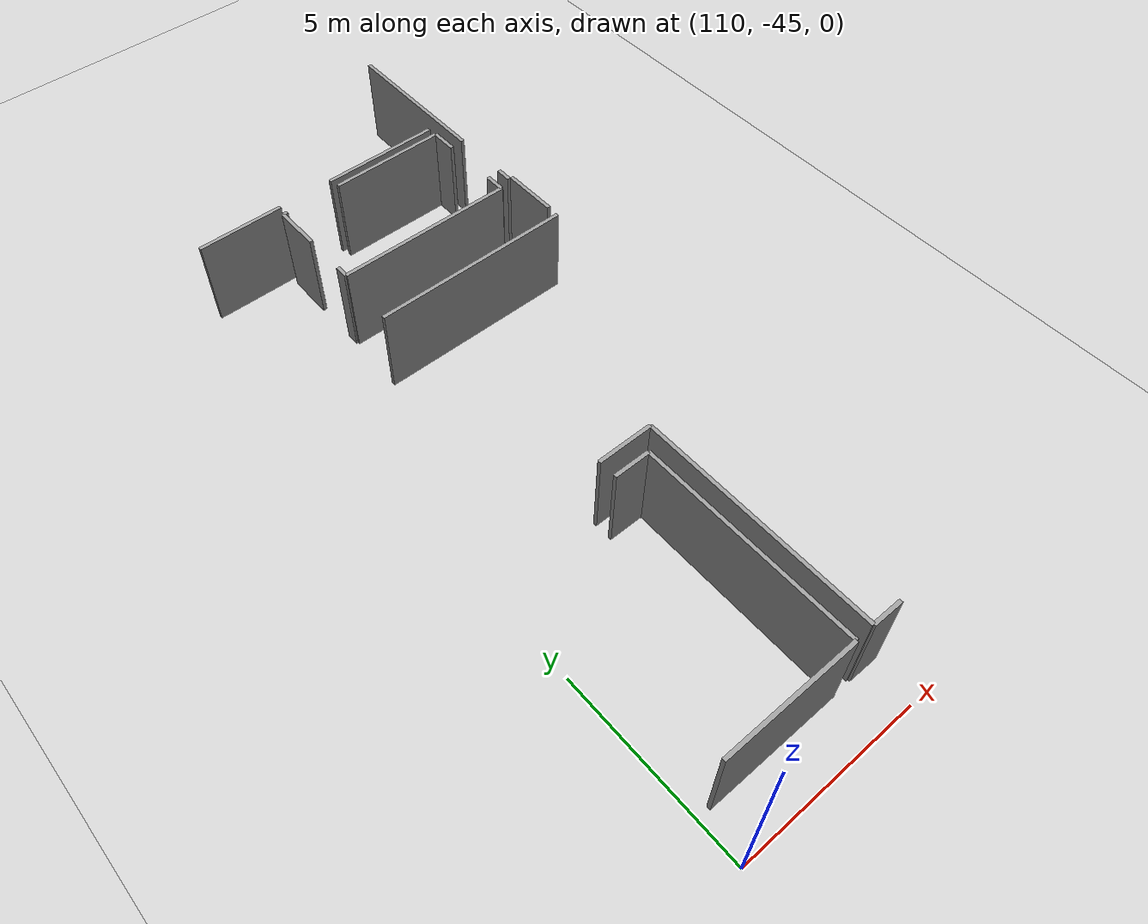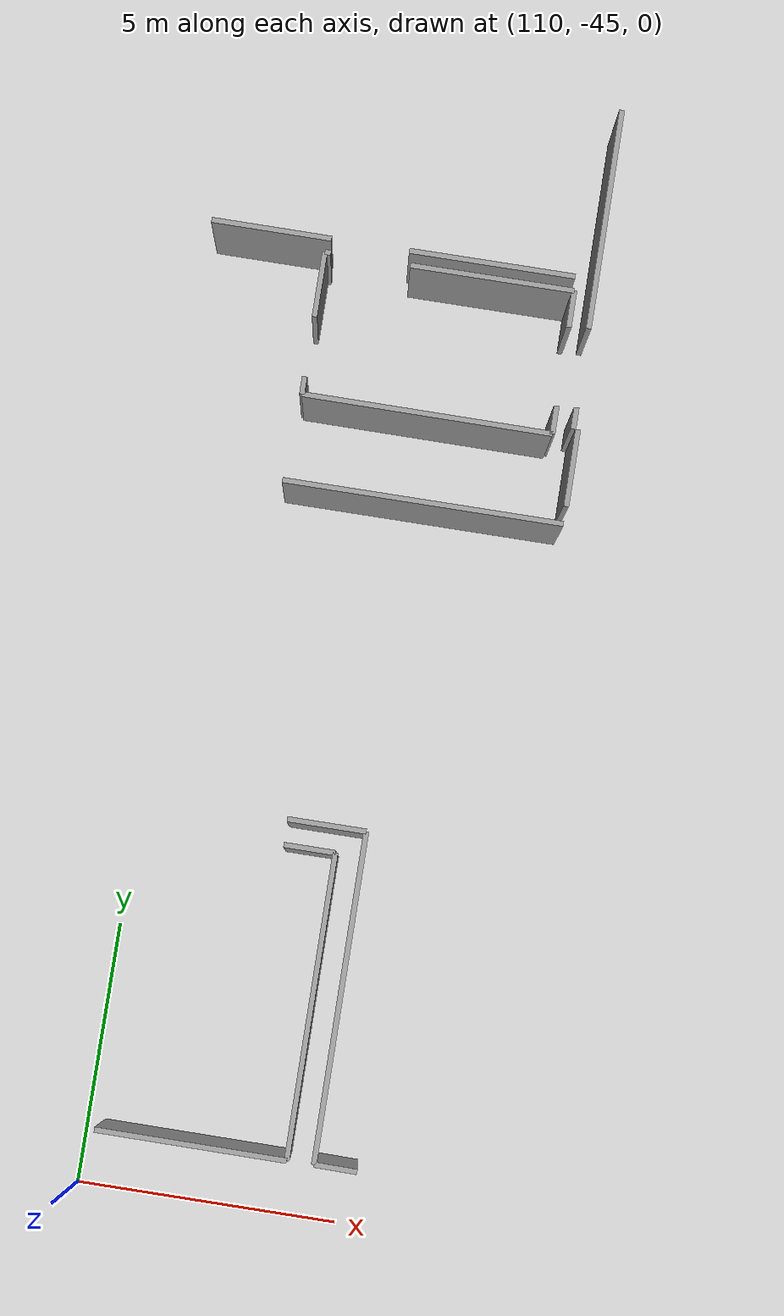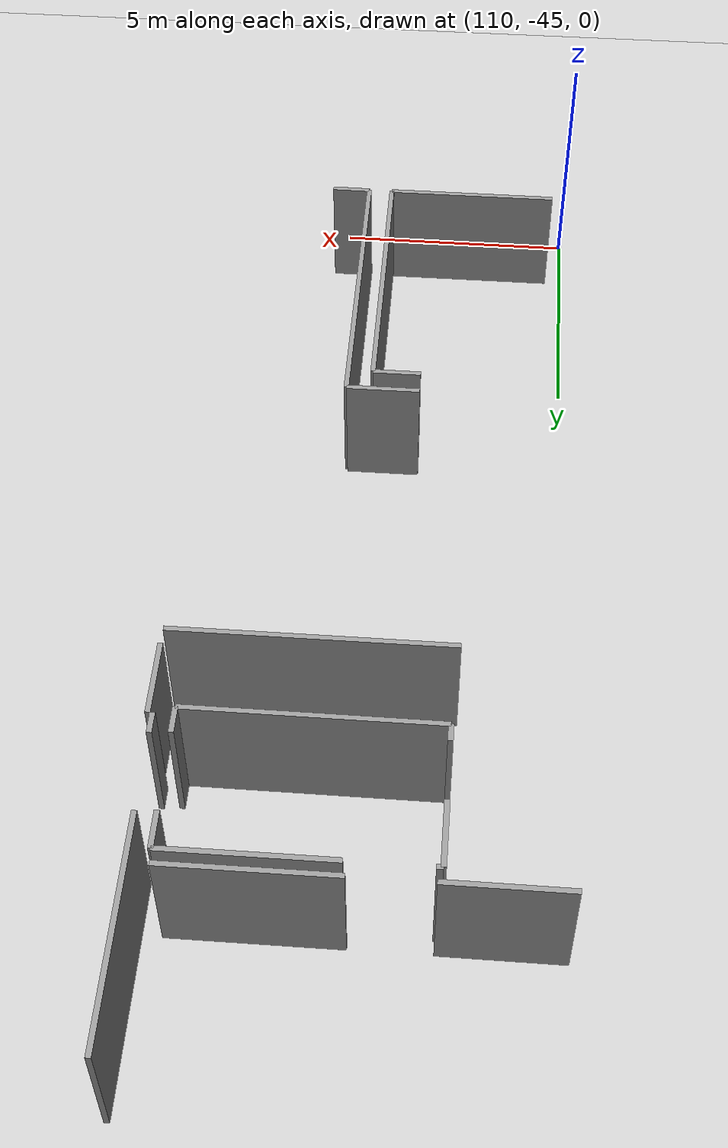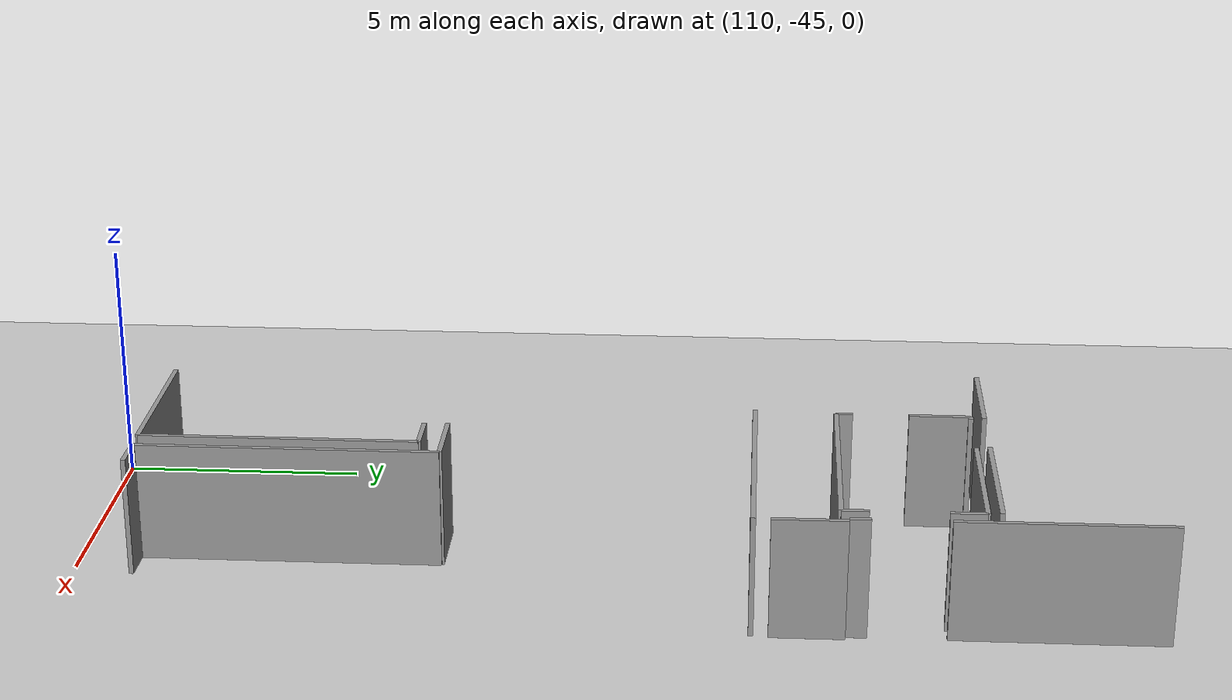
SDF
<sdf version="1.6">
 <world name="default">
  <model name="ground_plane">
   <static>1</static>
   <link name="link">
    <collision name="collision">
     <geometry><plane><normal>0 0 1</normal><size>100 100</size></plane></geometry>
     <surface><friction><ode><mu>100</mu><mu2>50</mu2></ode></friction></surface>
    </collision>
    <visual name="visual">
     <cast_shadows>0</cast_shadows>
     <geometry><plane><normal>0 0 1</normal><size>100 100</size></plane></geometry>
     <material>
      <script><uri>file://media/materials/scripts/gazebo.material</uri><name>Gazebo/Grey</name></script>
     </material>
    </visual>
   </link>
  </model>
  <model name="50015847">
   <static>1</static>
   <link name="Wall_879">
    <collision name="Wall_879_Collision">
     <geometry><box><size>0.338892561143 0.1 2.5</size></box></geometry>
     <pose>0.169446280572 0 1.25 0 0 0</pose>
    </collision>
    <visual name="Wall_879_Visual">
     <pose>0.169446280572 0 1.25 0 0 0</pose>
     <geometry><box><size>0.338892561143 0.1 2.5</size></box></geometry>
     <material>
      <script><uri>file://media/materials/scripts/gazebo.material</uri><name>Gazebo/Grey</name></script>
      <ambient>1 1 1 1</ambient>
     </material>
    </visual>
    <pose>244.299079677 -73.5198555957 0 0 0 1.57079632679</pose>
   </link>
   <link name="Wall_880">
    <collision name="Wall_880_Collision">
     <geometry><box><size>1.26633446891 0.1 2.5</size></box></geometry>
     <pose>0.633167234454 0 1.25 0 0 0</pose>
    </collision>
    <visual name="Wall_880_Visual">
     <pose>0.633167234454 0 1.25 0 0 0</pose>
     <geometry><box><size>1.26633446891 0.1 2.5</size></box></geometry>
     <material>
      <script><uri>file://media/materials/scripts/gazebo.material</uri><name>Gazebo/Grey</name></script>
      <ambient>1 1 1 1</ambient>
     </material>
    </visual>
    <pose>244.299079677 -72.0173386892 0 0 0 1.57079632679</pose>
   </link>
   <link name="Wall_881">
    <collision name="Wall_881_Collision">
     <geometry><box><size>0.116947170387 0.1 2.5</size></box></geometry>
     <pose>0.0584735851934 0 1.25 0 0 0</pose>
    </collision>
    <visual name="Wall_881_Visual">
     <pose>0.0584735851934 0 1.25 0 0 0</pose>
     <geometry><box><size>0.116947170387 0.1 2.5</size></box></geometry>
     <material>
      <script><uri>file://media/materials/scripts/gazebo.material</uri><name>Gazebo/Grey</name></script>
      <ambient>1 1 1 1</ambient>
     </material>
    </visual>
    <pose>244.299079677 -70.7510042203 0 0 0 0.0</pose>
   </link>
   <link name="Wall_882">
    <collision name="Wall_882_Collision">
     <geometry><box><size>3.14994661107 0.1 2.5</size></box></geometry>
     <pose>1.57497330554 0 1.25 0 0 0</pose>
    </collision>
    <visual name="Wall_882_Visual">
     <pose>1.57497330554 0 1.25 0 0 0</pose>
     <geometry><box><size>3.14994661107 0.1 2.5</size></box></geometry>
     <material>
      <script><uri>file://media/materials/scripts/gazebo.material</uri><name>Gazebo/Grey</name></script>
      <ambient>1 1 1 1</ambient>
     </material>
    </visual>
    <pose>245.941424722 -70.7510042203 0 0 0 0.0</pose>
   </link>
   <link name="Wall_883">
    <collision name="Wall_883_Collision">
     <geometry><box><size>0.71337773936 0.1 2.5</size></box></geometry>
     <pose>0.35668886968 0 1.25 0 0 0</pose>
    </collision>
    <visual name="Wall_883_Visual">
     <pose>0.35668886968 0 1.25 0 0 0</pose>
     <geometry><box><size>0.71337773936 0.1 2.5</size></box></geometry>
     <material>
      <script><uri>file://media/materials/scripts/gazebo.material</uri><name>Gazebo/Grey</name></script>
      <ambient>1 1 1 1</ambient>
     </material>
    </visual>
    <pose>249.091371333 -70.7510042203 0 0 0 -1.57079632679</pose>
   </link>
   <link name="Wall_884">
    <collision name="Wall_884_Collision">
     <geometry><box><size>0.538719682717 0.1 2.5</size></box></geometry>
     <pose>0.269359841359 0 1.25 0 0 0</pose>
    </collision>
    <visual name="Wall_884_Visual">
     <pose>0.269359841359 0 1.25 0 0 0</pose>
     <geometry><box><size>0.538719682717 0.1 2.5</size></box></geometry>
     <material>
      <script><uri>file://media/materials/scripts/gazebo.material</uri><name>Gazebo/Grey</name></script>
      <ambient>1 1 1 1</ambient>
     </material>
    </visual>
    <pose>249.091371333 -72.9948644938 0 0 0 -1.57079632679</pose>
   </link>
   <link name="Wall_885">
    <collision name="Wall_885_Collision">
     <geometry><box><size>4.79231132031 0.1 2.5</size></box></geometry>
     <pose>2.39615566016 0 1.25 0 0 0</pose>
    </collision>
    <visual name="Wall_885_Visual">
     <pose>2.39615566016 0 1.25 0 0 0</pose>
     <geometry><box><size>4.79231132031 0.1 2.5</size></box></geometry>
     <material>
      <script><uri>file://media/materials/scripts/gazebo.material</uri><name>Gazebo/Grey</name></script>
      <ambient>1 1 1 1</ambient>
     </material>
    </visual>
    <pose>249.091371333 -73.5335841765 0 0 0 3.13872793994</pose>
   </link>
   <link name="Wall_894">
    <collision name="Wall_894_Collision">
     <geometry><box><size>3.18808155794 0.1 2.5</size></box></geometry>
     <pose>1.59404077897 0 1.25 0 0 0</pose>
    </collision>
    <visual name="Wall_894_Visual">
     <pose>1.59404077897 0 1.25 0 0 0</pose>
     <geometry><box><size>3.18808155794 0.1 2.5</size></box></geometry>
     <material>
      <script><uri>file://media/materials/scripts/gazebo.material</uri><name>Gazebo/Grey</name></script>
      <ambient>1 1 1 1</ambient>
     </material>
    </visual>
    <pose>249.068490365 -70.4766868358 0 0 0 3.14159265359</pose>
   </link>
   <link name="Wall_895">
    <collision name="Wall_895_Collision">
     <geometry><box><size>2.31352627008 0.1 2.5</size></box></geometry>
     <pose>1.15676313504 0 1.25 0 0 0</pose>
    </collision>
    <visual name="Wall_895_Visual">
     <pose>1.15676313504 0 1.25 0 0 0</pose>
     <geometry><box><size>2.31352627008 0.1 2.5</size></box></geometry>
     <material>
      <script><uri>file://media/materials/scripts/gazebo.material</uri><name>Gazebo/Grey</name></script>
      <ambient>1 1 1 1</ambient>
     </material>
    </visual>
    <pose>244.38551889 -70.4766868358 0 0 0 3.13928496538</pose>
   </link>
   <link name="Wall_921">
    <collision name="Wall_921_Collision">
     <geometry><box><size>1.48166980221 0.1 2.5</size></box></geometry>
     <pose>0.740834901103 0 1.25 0 0 0</pose>
    </collision>
    <visual name="Wall_921_Visual">
     <pose>0.740834901103 0 1.25 0 0 0</pose>
     <geometry><box><size>1.48166980221 0.1 2.5</size></box></geometry>
     <material>
      <script><uri>file://media/materials/scripts/gazebo.material</uri><name>Gazebo/Grey</name></script>
      <ambient>1 1 1 1</ambient>
     </material>
    </visual>
    <pose>249.556617684 -74.8627141913 0 0 0 1.57079632679</pose>
   </link>
   <link name="Wall_923">
    <collision name="Wall_923_Collision">
     <geometry><box><size>0.414908221895 0.1 2.5</size></box></geometry>
     <pose>0.207454110947 0 1.25 0 0 0</pose>
    </collision>
    <visual name="Wall_923_Visual">
     <pose>0.207454110947 0 1.25 0 0 0</pose>
     <geometry><box><size>0.414908221895 0.1 2.5</size></box></geometry>
     <material>
      <script><uri>file://media/materials/scripts/gazebo.material</uri><name>Gazebo/Grey</name></script>
      <ambient>1 1 1 1</ambient>
     </material>
    </visual>
    <pose>249.467636142 -73.3810443891 0 0 0 1.57079632679</pose>
   </link>
   <link name="Wall_924">
    <collision name="Wall_924_Collision">
     <geometry><box><size>4.2858595617 0.1 2.5</size></box></geometry>
     <pose>2.14292978085 0 1.25 0 0 0</pose>
    </collision>
    <visual name="Wall_924_Visual">
     <pose>2.14292978085 0 1.25 0 0 0</pose>
     <geometry><box><size>4.2858595617 0.1 2.5</size></box></geometry>
     <material>
      <script><uri>file://media/materials/scripts/gazebo.material</uri><name>Gazebo/Grey</name></script>
      <ambient>1 1 1 1</ambient>
     </material>
    </visual>
    <pose>249.467636142 -71.4303147404 0 0 0 1.57079632679</pose>
   </link>
   <link name="Wall_1502">
    <collision name="Wall_1502_Collision">
     <geometry><box><size>6.21243707734 0.1 2.5</size></box></geometry>
     <pose>3.10621853867 0 1.25 0 0 0</pose>
    </collision>
    <visual name="Wall_1502_Visual">
     <pose>3.10621853867 0 1.25 0 0 0</pose>
     <geometry><box><size>6.21243707734 0.1 2.5</size></box></geometry>
     <material>
      <script><uri>file://media/materials/scripts/gazebo.material</uri><name>Gazebo/Grey</name></script>
      <ambient>1 1 1 1</ambient>
     </material>
    </visual>
    <pose>246.788020542 -87.7060558296 0 0 0 1.57079632679</pose>
   </link>
   <link name="Wall_1503">
    <collision name="Wall_1503_Collision">
     <geometry><box><size>1.48980525754 0.1 2.5</size></box></geometry>
     <pose>0.744902628769 0 1.25 0 0 0</pose>
    </collision>
    <visual name="Wall_1503_Visual">
     <pose>0.744902628769 0 1.25 0 0 0</pose>
     <geometry><box><size>1.48980525754 0.1 2.5</size></box></geometry>
     <material>
      <script><uri>file://media/materials/scripts/gazebo.material</uri><name>Gazebo/Grey</name></script>
      <ambient>1 1 1 1</ambient>
     </material>
    </visual>
    <pose>246.788020542 -81.4936187522 0 0 0 3.14159265359</pose>
   </link>
   <link name="Wall_1506">
    <collision name="Wall_1506_Collision">
     <geometry><box><size>5.35923119947 0.1 2.5</size></box></geometry>
     <pose>2.67961559974 0 1.25 0 0 0</pose>
    </collision>
    <visual name="Wall_1506_Visual">
     <pose>2.67961559974 0 1.25 0 0 0</pose>
     <geometry><box><size>5.35923119947 0.1 2.5</size></box></geometry>
     <material>
      <script><uri>file://media/materials/scripts/gazebo.material</uri><name>Gazebo/Grey</name></script>
      <ambient>1 1 1 1</ambient>
     </material>
    </visual>
    <pose>244.194844155 -75.1970305588 0 0 0 0.0</pose>
   </link>
   <link name="Wall_1509">
    <collision name="Wall_1509_Collision">
     <geometry><box><size>0.808515595741 0.1 2.5</size></box></geometry>
     <pose>0.40425779787 0 1.25 0 0 0</pose>
    </collision>
    <visual name="Wall_1509_Visual">
     <pose>0.40425779787 0 1.25 0 0 0</pose>
     <geometry><box><size>0.808515595741 0.1 2.5</size></box></geometry>
     <material>
      <script><uri>file://media/materials/scripts/gazebo.material</uri><name>Gazebo/Grey</name></script>
      <ambient>1 1 1 1</ambient>
     </material>
    </visual>
    <pose>247.596481416 -87.7154624498 0 0 0 3.12995795847</pose>
   </link>
   <link name="Wall_1519">
    <collision name="Wall_1519_Collision">
     <geometry><box><size>0.973712309961 0.1 2.5</size></box></geometry>
     <pose>0.48685615498 0 1.25 0 0 0</pose>
    </collision>
    <visual name="Wall_1519_Visual">
     <pose>0.48685615498 0 1.25 0 0 0</pose>
     <geometry><box><size>0.973712309961 0.1 2.5</size></box></geometry>
     <material>
      <script><uri>file://media/materials/scripts/gazebo.material</uri><name>Gazebo/Grey</name></script>
      <ambient>1 1 1 1</ambient>
     </material>
    </visual>
    <pose>245.308384604 -81.9769156455 0 0 0 0.0</pose>
   </link>
   <link name="Wall_1520">
    <collision name="Wall_1520_Collision">
     <geometry><box><size>5.73854680429 0.1 2.5</size></box></geometry>
     <pose>2.86927340215 0 1.25 0 0 0</pose>
    </collision>
    <visual name="Wall_1520_Visual">
     <pose>2.86927340215 0 1.25 0 0 0</pose>
     <geometry><box><size>5.73854680429 0.1 2.5</size></box></geometry>
     <material>
      <script><uri>file://media/materials/scripts/gazebo.material</uri><name>Gazebo/Grey</name></script>
      <ambient>1 1 1 1</ambient>
     </material>
    </visual>
    <pose>246.282096914 -81.9769156455 0 0 0 -1.57079632679</pose>
   </link>
   <link name="Wall_1521">
    <collision name="Wall_1521_Collision">
     <geometry><box><size>3.5999445948 0.1 2.5</size></box></geometry>
     <pose>1.7999722974 0 1.25 0 0 0</pose>
    </collision>
    <visual name="Wall_1521_Visual">
     <pose>1.7999722974 0 1.25 0 0 0</pose>
     <geometry><box><size>3.5999445948 0.1 2.5</size></box></geometry>
     <material>
      <script><uri>file://media/materials/scripts/gazebo.material</uri><name>Gazebo/Grey</name></script>
      <ambient>1 1 1 1</ambient>
     </material>
    </visual>
    <pose>246.282096914 -87.7154624498 0 0 0 3.1398271187</pose>
   </link>
   <pose>-132.35 43.9162226064 0 0 0 0</pose>
  </model>
 </world>
</sdf>
